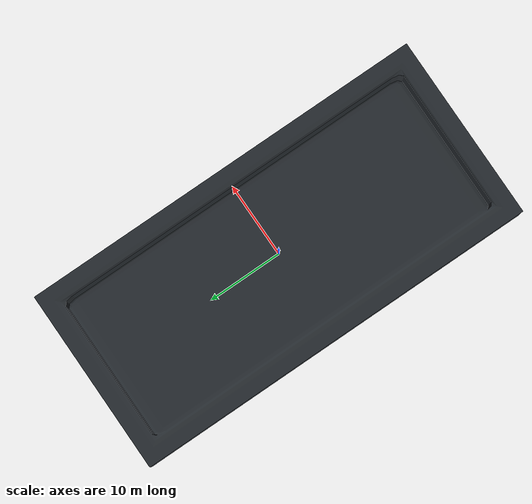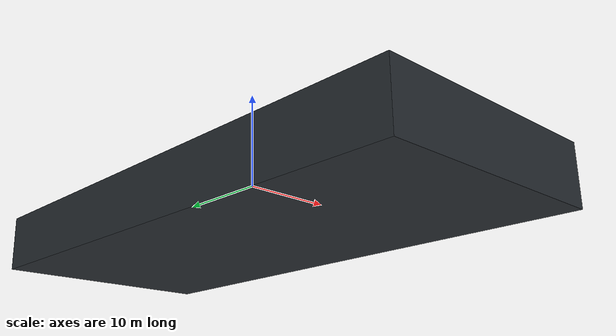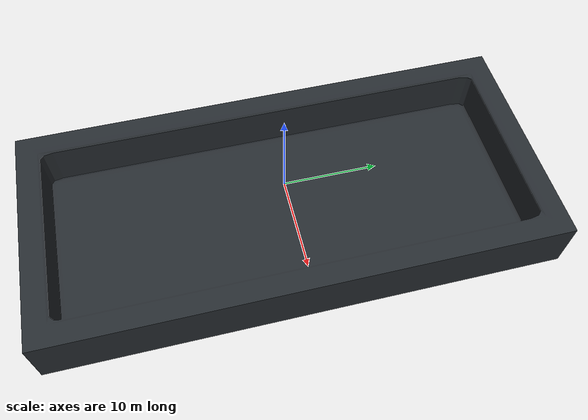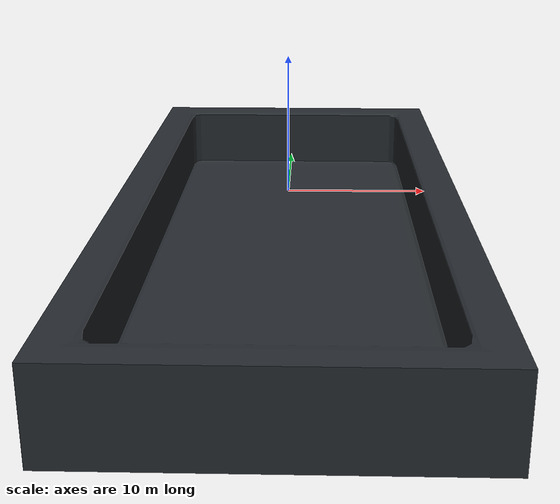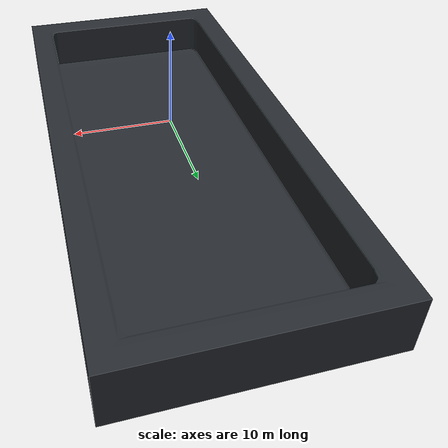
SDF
<?xml version="1.0" ?>
<sdf version="1.9">
    <model name="simple_pool">
        <static>true</static>
        <link name="link">
            <visual name="pool_visual">
                <geometry>
                    <mesh>
                        <uri>simple_pool.dae</uri>
                    </mesh>
                </geometry>
            </visual>
            <collision name="pool_collision">
                <geometry>
                    <mesh>
                        <uri>simple_pool.dae</uri>
                    </mesh>
                </geometry>
            </collision>
        </link>
    </model>
</sdf>
